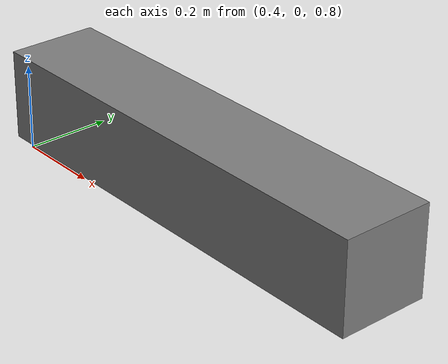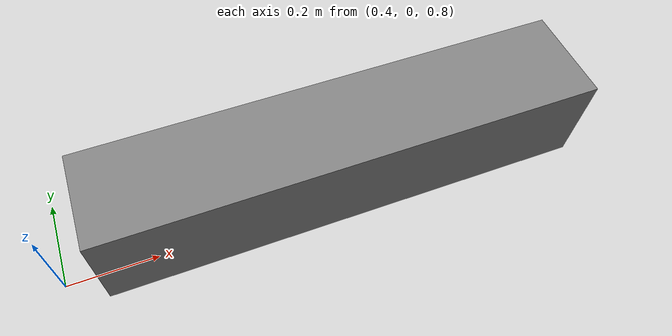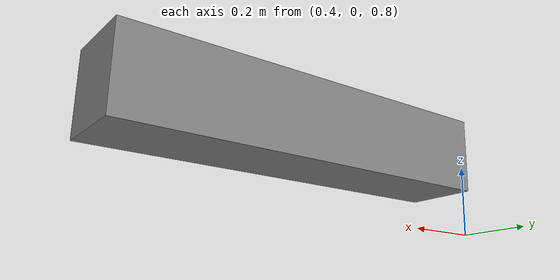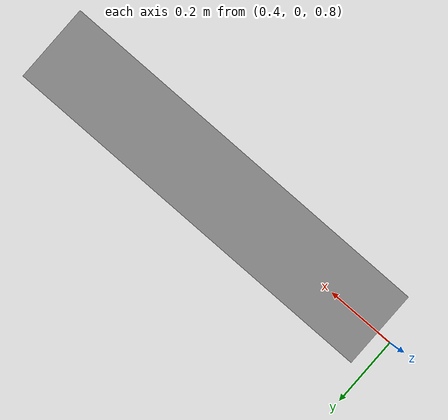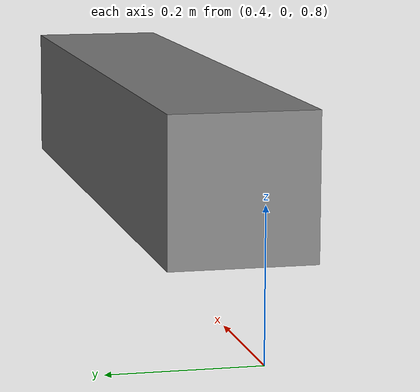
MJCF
<mujoco>
  <option timestep="0.001" gravity="0 0 -9.81"/>
  <worldbody>
    <body name="box" pos="1 0 1">
      <freejoint/>
      <geom type="box" size=".5 .1 .1" mass="1"/>
    </body>
  </worldbody>
  <equality>
    <connect body1="box" anchor="-0.5 0 0"/>
  </equality>
  <keyframe>
    <!-- qpos: pos(3), quat(4) -->
    <!-- qvel: lin(3), rot(3) -->
    <key qpos="1 0 1 1 0 0 0" qvel="0 0 2 0 0 0"/>
  </keyframe>
</mujoco>
